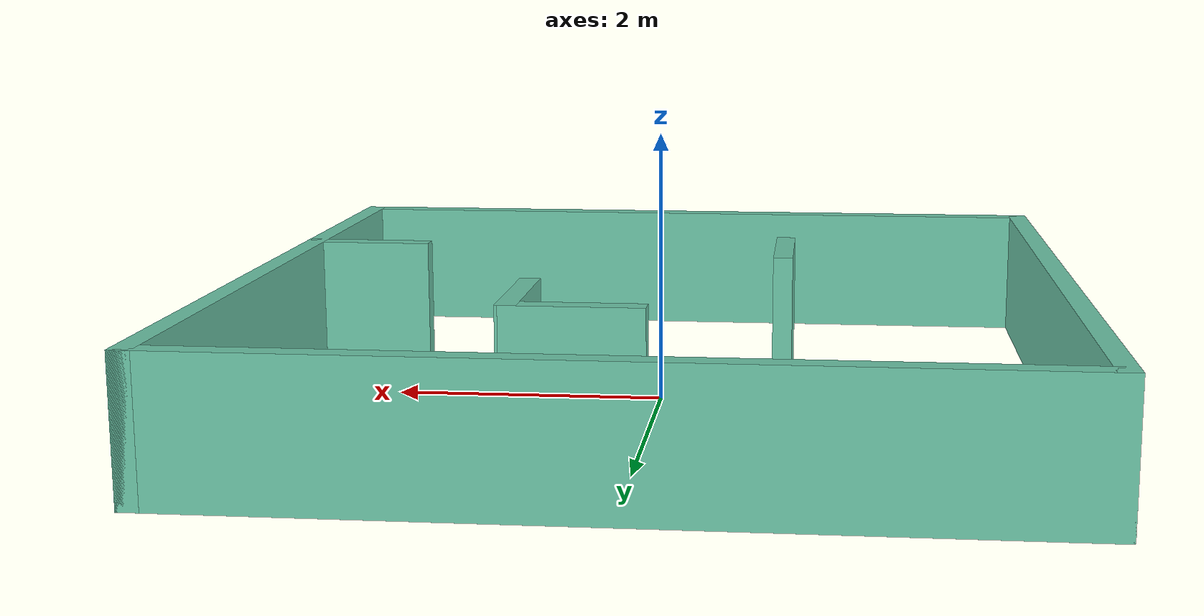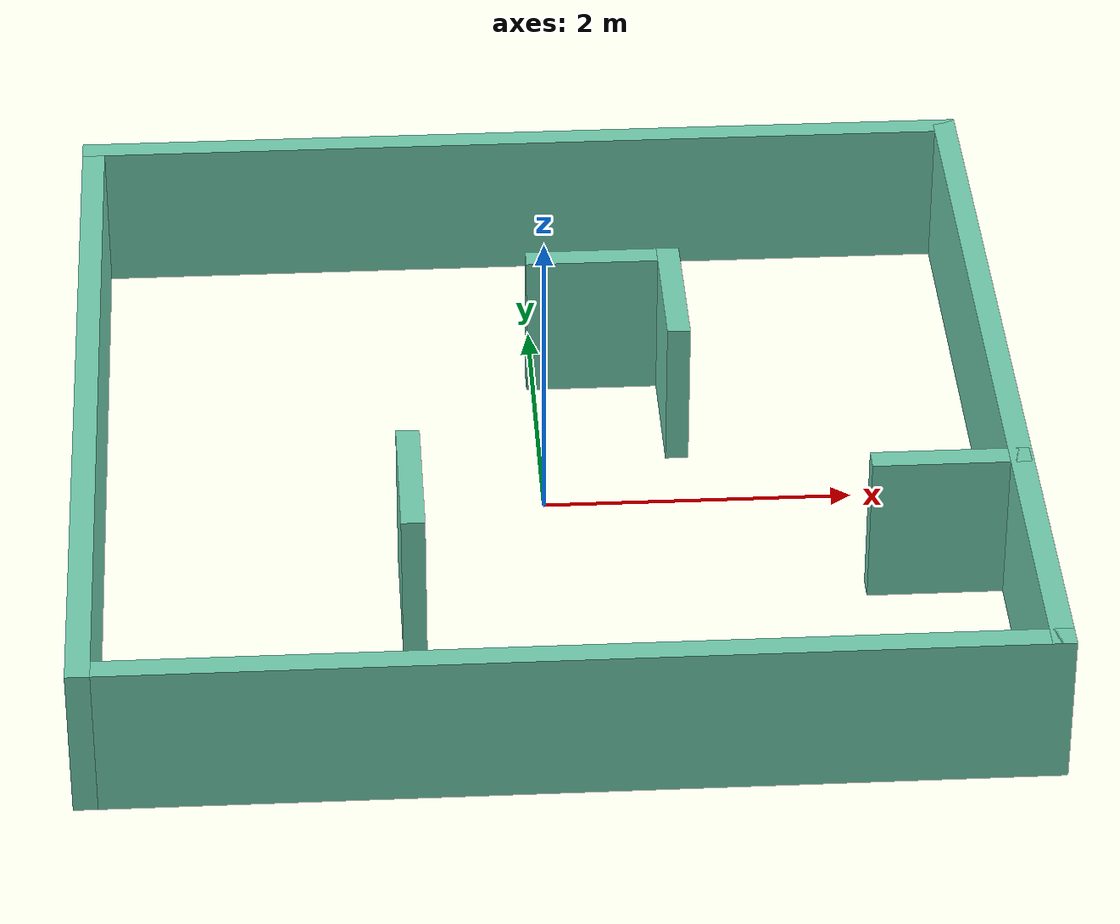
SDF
<?xml version='1.0'?>
<sdf version='1.7'>
  <model name='training_maze'>
    <pose>0.004 0.022 0 0 -0 0</pose>
    <link name='Wall_0'>
      <collision name='Wall_0_Collision'>
        <geometry>
          <box>
            <size>6 0.15 1</size>
          </box>
        </geometry>
        <pose>0 0 0.5 0 -0 0</pose>
      </collision>
      <visual name='Wall_0_Visual'>
        <pose>0 0 0.5 0 -0 0</pose>
        <geometry>
          <box>
            <size>6 0.15 1</size>
          </box>
        </geometry>
        <material>
          <script>
            <uri>file://media/materials/scripts/gazebo.material</uri>
            <name>Gazebo/Grey</name>
          </script>
          <ambient>0.435294 0.796078 0.67451 1</ambient>
        </material>
        <meta>
          <layer>0</layer>
        </meta>
      </visual>
      <pose>0 -2.925 0 0 -0 3.14159</pose>
    </link>
    <link name='Wall_11'>
      <collision name='Wall_11_Collision'>
        <geometry>
          <box>
            <size>1 0.15 1</size>
          </box>
        </geometry>
        <pose>0 0 0.5 0 -0 0</pose>
      </collision>
      <visual name='Wall_11_Visual'>
        <pose>0 0 0.5 0 -0 0</pose>
        <geometry>
          <box>
            <size>1 0.15 1</size>
          </box>
        </geometry>
        <material>
          <script>
            <uri>file://media/materials/scripts/gazebo.material</uri>
            <name>Gazebo/Grey</name>
          </script>
          <ambient>0.435294 0.796078 0.67451 1</ambient>
        </material>
        <meta>
          <layer>0</layer>
        </meta>
      </visual>
      <pose>0.453069 1.39255 0 0 -0 0</pose>
    </link>
    <link name='Wall_12'>
      <collision name='Wall_12_Collision'>
        <geometry>
          <box>
            <size>1 0.15 1</size>
          </box>
        </geometry>
        <pose>0 0 0.5 0 -0 0</pose>
      </collision>
      <visual name='Wall_12_Visual'>
        <pose>0 0 0.5 0 -0 0</pose>
        <geometry>
          <box>
            <size>1 0.15 1</size>
          </box>
        </geometry>
        <material>
          <script>
            <uri>file://media/materials/scripts/gazebo.material</uri>
            <name>Gazebo/Grey</name>
          </script>
          <ambient>0.435294 0.796078 0.67451 1</ambient>
        </material>
        <meta>
          <layer>0</layer>
        </meta>
      </visual>
      <pose>0.898183 0.967546 0 0 -0 -1.5708</pose>
    </link>
    <link name='Wall_18'>
      <collision name='Wall_18_Collision'>
        <geometry>
          <box>
            <size>1 0.15 1</size>
          </box>
        </geometry>
        <pose>0 0 0.5 0 -0 0</pose>
      </collision>
      <visual name='Wall_18_Visual'>
        <pose>0 0 0.5 0 -0 0</pose>
        <geometry>
          <box>
            <size>1 0.15 1</size>
          </box>
        </geometry>
        <material>
          <script>
            <uri>file://media/materials/scripts/gazebo.material</uri>
            <name>Gazebo/Grey</name>
          </script>
          <ambient>0.435294 0.796078 0.67451 1</ambient>
        </material>
        <meta>
          <layer>0</layer>
        </meta>
      </visual>
      <pose>2.48423 -1.04173 0 0 -0 0</pose>
    </link>
    <link name='Wall_3'>
      <collision name='Wall_3_Collision'>
        <geometry>
          <box>
            <size>6 0.15 1</size>
          </box>
        </geometry>
        <pose>0 0 0.5 0 -0 0</pose>
      </collision>
      <visual name='Wall_3_Visual'>
        <pose>0 0 0.5 0 -0 0</pose>
        <geometry>
          <box>
            <size>6 0.15 1</size>
          </box>
        </geometry>
        <material>
          <script>
            <uri>file://media/materials/scripts/gazebo.material</uri>
            <name>Gazebo/Grey</name>
          </script>
          <ambient>0.435294 0.796078 0.67451 1</ambient>
        </material>
        <meta>
          <layer>0</layer>
        </meta>
      </visual>
      <pose>-2.925 -0 0 0 -0 1.5708</pose>
    </link>
    <link name='Wall_4'>
      <collision name='Wall_4_Collision'>
        <geometry>
          <box>
            <size>6 0.15 1</size>
          </box>
        </geometry>
        <pose>0 0 0.5 0 -0 0</pose>
      </collision>
      <visual name='Wall_4_Visual'>
        <pose>0 0 0.5 0 -0 0</pose>
        <geometry>
          <box>
            <size>6 0.15 1</size>
          </box>
        </geometry>
        <material>
          <script>
            <uri>file://media/materials/scripts/gazebo.material</uri>
            <name>Gazebo/Grey</name>
          </script>
          <ambient>0.435294 0.796078 0.67451 1</ambient>
        </material>
        <meta>
          <layer>0</layer>
        </meta>
      </visual>
      <pose>0 2.925 0 0 -0 0</pose>
    </link>
    <link name='Wall_5'>
      <collision name='Wall_5_Collision'>
        <geometry>
          <box>
            <size>6 0.15 1</size>
          </box>
        </geometry>
        <pose>0 0 0.5 0 -0 0</pose>
      </collision>
      <visual name='Wall_5_Visual'>
        <pose>0 0 0.5 0 -0 0</pose>
        <geometry>
          <box>
            <size>6 0.15 1</size>
          </box>
        </geometry>
        <material>
          <script>
            <uri>file://media/materials/scripts/gazebo.material</uri>
            <name>Gazebo/Grey</name>
          </script>
          <ambient>0.435294 0.796078 0.67451 1</ambient>
        </material>
        <meta>
          <layer>0</layer>
        </meta>
      </visual>
      <pose>2.925 -0 0 0 -0 -1.5708</pose>
    </link>
    <link name='Wall_9'>
      <collision name='Wall_9_Collision'>
        <geometry>
          <box>
            <size>1 0.15 1</size>
          </box>
        </geometry>
        <pose>0 0 0.5 0 -0 0</pose>
      </collision>
      <visual name='Wall_9_Visual'>
        <pose>0 0 0.5 0 -0 0</pose>
        <geometry>
          <box>
            <size>1 0.15 1</size>
          </box>
        </geometry>
        <material>
          <script>
            <uri>file://media/materials/scripts/gazebo.material</uri>
            <name>Gazebo/Grey</name>
          </script>
          <ambient>0.435294 0.796078 0.67451 1</ambient>
        </material>
        <meta>
          <layer>0</layer>
        </meta>
      </visual>
      <pose>-0.897 -1.061 0 0 -0 -1.5708</pose>
    </link>
    <static>1</static>
  </model>
</sdf>
